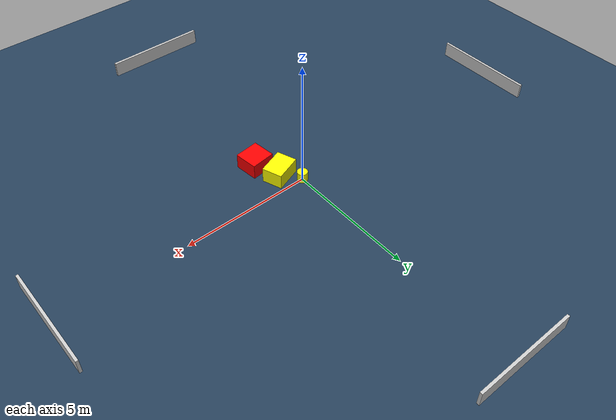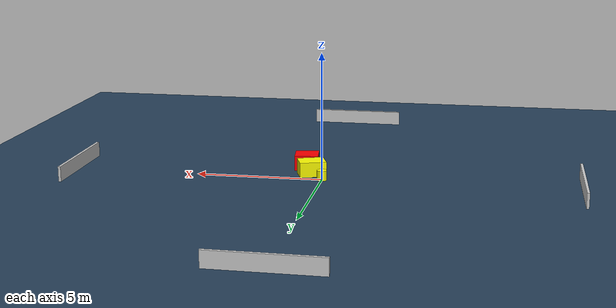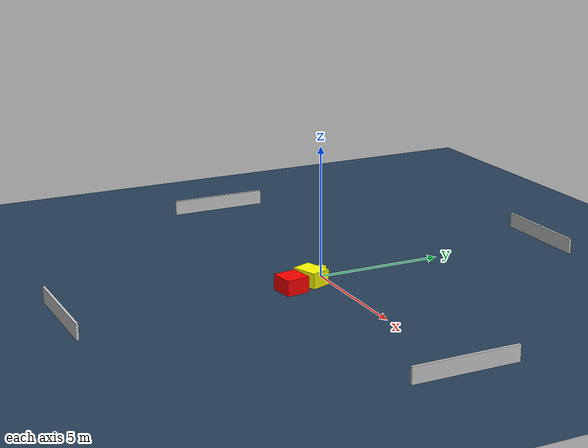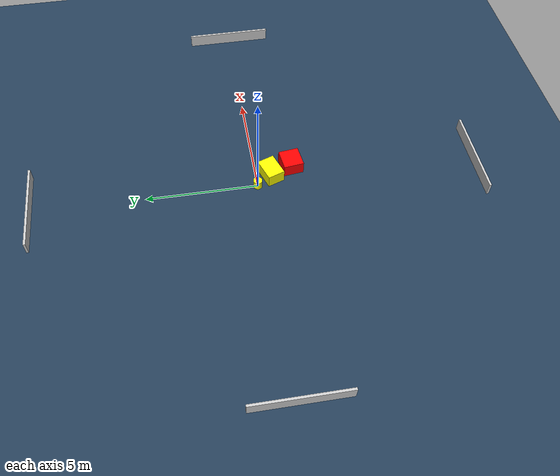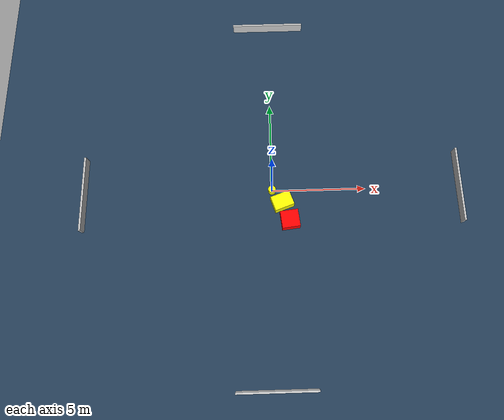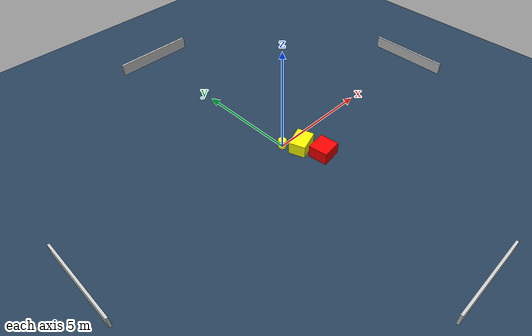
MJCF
<?xml version="1.0" ?>
<mujoco model="generated_environment">
  <option timestep="0.01" integrator="RK4" cone="elliptic"/>
  <default>
    <geom density="1"/>
  </default>
  <asset>
    <texture builtin="gradient" height="3072" name="skybox" rgb1="0.3 0.5 0.7" rgb2="0 0 0" type="skybox" width="512"/>
    <texture builtin="checker" height="300" name="groundplane" rgb1="0.2 0.3 0.4" rgb2="0.1 0.2 0.3" type="2d" width="300"/>
    <material name="groundplane" reflectance="0.2" texrepeat="5 5" texture="groundplane"/>
  </asset>
  <worldbody>
    <light dir="0 0 -1" directional="true" pos="0 0 1.5"/>
    <geom condim="3" friction="0.5 0.005 0.001" material="groundplane" name="floor" pos="0 0 0" size="0 0 0.05" type="plane"/>
    <body name="walls">
      <geom name="wall_1" condim="4" pos="-10.0 0.0 0.3" rgba="0.800000011920929 0.800000011920929 0.800000011920929 1.0" size="0.05 2.0 0.3" type="box"/>
      <geom name="wall_2" condim="4" pos="10.0 0.0 0.3" rgba="0.800000011920929 0.800000011920929 0.800000011920929 1.0" size="0.05 2.0 0.3" type="box"/>
      <geom name="wall_3" condim="4" pos="0.0 -10.0 0.3" rgba="0.800000011920929 0.800000011920929 0.800000011920929 1.0" size="2.0 0.05 0.3" type="box"/>
      <geom name="wall_4" condim="4" pos="0.0 10.0 0.3" rgba="0.800000011920929 0.800000011920929 0.800000011920929 1.0" size="2.0 0.05 0.3" type="box"/>
    </body>
    <body name="robot">
      <joint name="joint_x" type="slide" pos="0 0 0" axis="1 0 0"/>
      <joint name="joint_y" type="slide" pos="0 0 0" axis="0 1 0"/>
      <geom name="robot" type="cylinder" pos="0.0 0.0 0.2" size="0.2 0.2 0.0" mass="5.0" friction="1.0 0.005 0.0001" condim="4" rgba="1.0 1.0 0.0 1.0"/>
    </body>
    <body name="obstacle_1_movable">
      <geom name="obstacle_1_movable" condim="4" pos="0.5261815782373629 -0.6766459516469504 0.3" euler="0 0 289.68232907626225" friction="0.0 0.005 0.001" rgba="1.0 1.0 0.0 1.0" size="0.39223285679259673 0.5276377138968825 0.3" type="box" mass="0.1"/>
      <joint type="free"/>
    </body>
    <body name="obstacle_2_static">
      <geom name="obstacle_2_static" condim="4" pos="0.9025422007259675 -1.6609949616985955 0.3" euler="0 0 186.91832599222482" friction="0.0 0.005 0.001" rgba="1.0 0.0 0.0 1.0" size="0.4726133079498462 0.45357188075728033 0.3" type="box"/>
    </body>
  </worldbody>
  <actuator>
    <motor name="actuator_x" joint="joint_x" gear="1" ctrlrange="-1 1"/>
    <motor name="actuator_y" joint="joint_y" gear="1" ctrlrange="-1 1"/>
  </actuator>
</mujoco>
